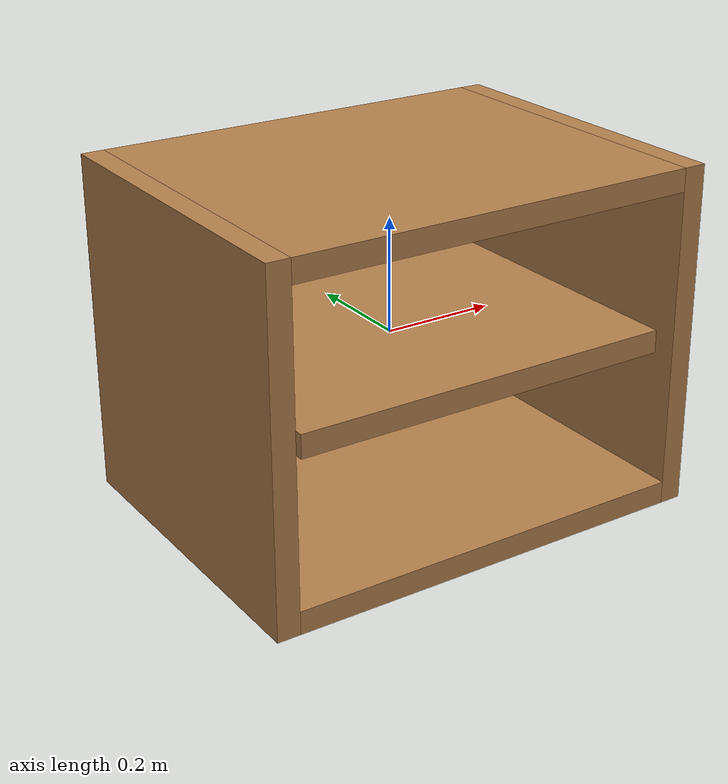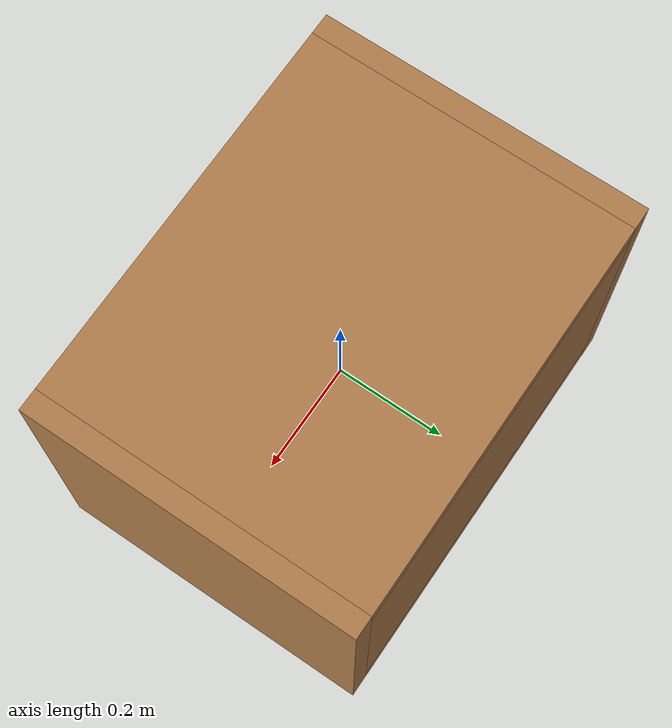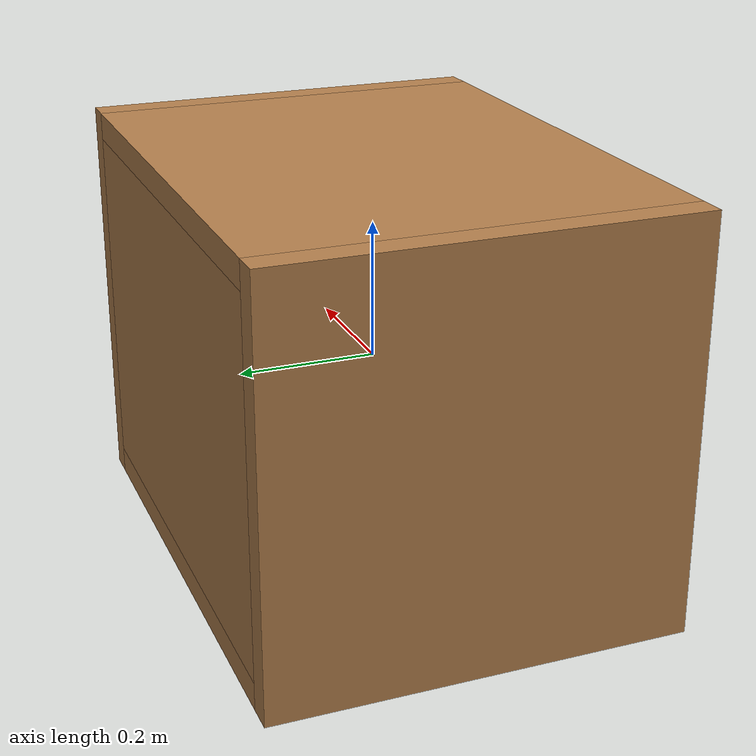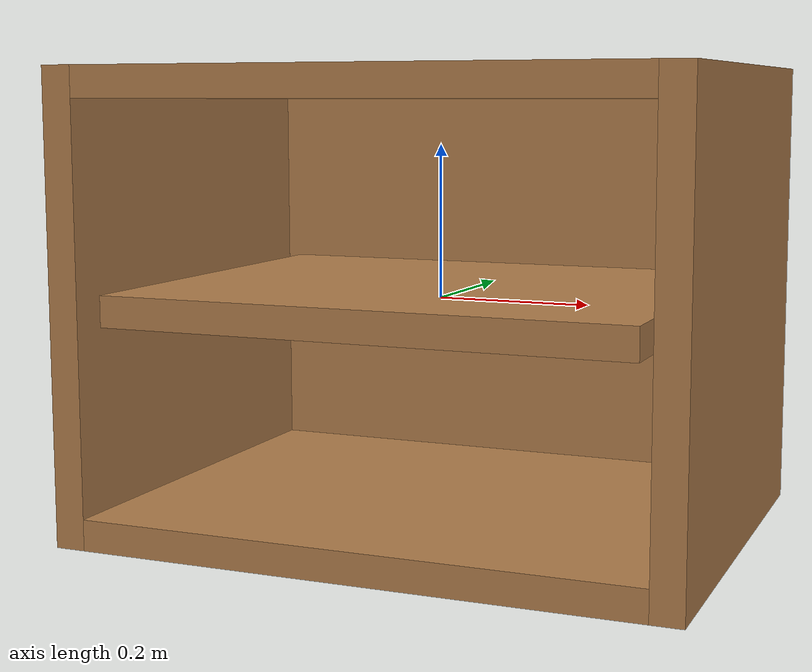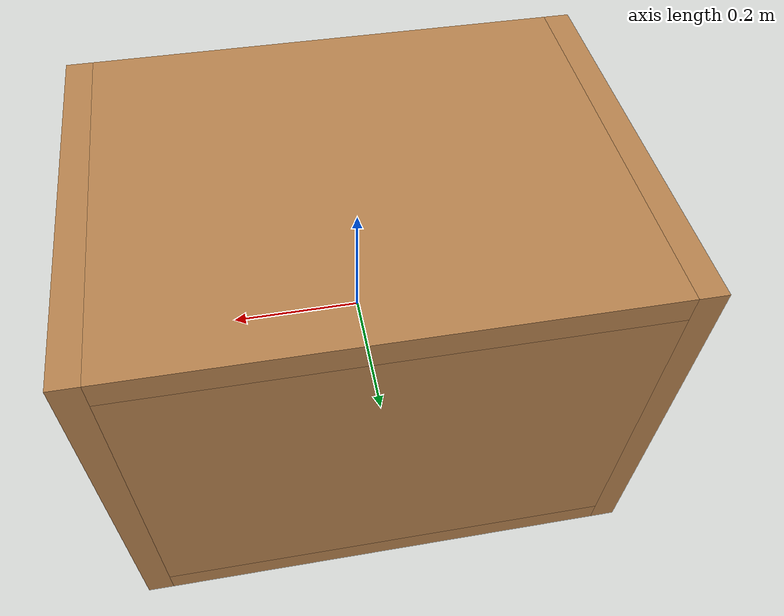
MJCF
<mujoco model="hinge_cab">
  <asset>
    <texture file="visuals/wood1.png" type="cube" name="tex"/>
    <material name="mat" shininess="0.1" texture="tex"/>
  </asset>
  <default>
    <default class="cab">
      <geom group="0" density="10"/>
    </default>
  </default>
  <worldbody>
    <body>
      <body name="object">
        <geom pos="0.0 0 0.28" size="0.36 0.3 0.02" type="box" material="mat" class="cab" name="top"/>
        <geom pos="0.0 0 -0.28" size="0.36 0.3 0.02" type="box" material="mat" class="cab" name="bottom"/>
        <geom pos="0.0 0.28 0" size="0.36 0.02 0.26" type="box" material="mat" class="cab" name="back"/>
        <geom pos="0.38 0 0" size="0.02 0.3 0.3" type="box" material="mat" class="cab" name="right"/>
        <geom pos="-0.38 0 0" size="0.02 0.3 0.3" type="box" material="mat" class="cab" name="left"/>
        <geom pos="0.0 0.0 0.0" size="0.34 0.28 0.02" type="box" material="mat" class="cab" name="shelf"/>
        <body name="hingeleftdoor" pos="-0.38 -0.32 0">
          <joint axis="0 0 1" name="leftdoorhinge" limited="true" range="-3.00 0" damping="2"/>
          <site rgba="1 0 0 0" size="0.005" pos="-0.25 -0.20 0" name="leftdoor_p1"/>
          <site rgba="0 1 0 0" size="0.005" pos="-0.20 -0.20 0" name="leftdoor_p2"/>
          <site rgba="0 0 1 0" size="0.005" pos="-0.25 -0.20 0.05" name="leftdoor_p3"/>
        </body>
        <body name="hingerightdoor" pos="0.38 -0.32 0">
          <joint axis="0 0 1" name="rightdoorhinge" limited="true" range="0 3.00" damping="2"/>
          <site rgba="1 0 0 0" size="0.005" pos="0.25 -0.20 0" name="rightdoor_p1"/>
          <site rgba="0 1 0 0" size="0.005" pos="0.20 -0.20 0" name="rightdoor_p2"/>
          <site rgba="0 0 1 0" size="0.005" pos="0.25 -0.20 0.05" name="rightdoor_p3"/>
        </body>
        <!-- exterior bounding box points -->
        <site rgba="0 0 0 1" size="0.005" pos="0 0 0" name="ext_p0"/>
        <site rgba="1 0 0 1" size="0.005" pos="0 0 0" name="ext_px"/>
        <site rgba="0 1 0 1" size="0.005" pos="0 0 0" name="ext_py"/>
        <site rgba="0 0 1 1" size="0.005" pos="0 0 0" name="ext_pz"/>
        <!-- interior bounding box points -->
        <site rgba="0.5 0.5 0.5 1" size="0.005" pos="0 0 0" name="int_p0"/>
        <site rgba="1 1 0 1" size="0.005" pos="0 0 0" name="int_px"/>
        <site rgba="0 1 1 1" size="0.005" pos="0 0 0" name="int_py"/>
        <site rgba="1 0 1 1" size="0.005" pos="0 0 0" name="int_pz"/>
      </body>
    </body>
  </worldbody>
</mujoco>
